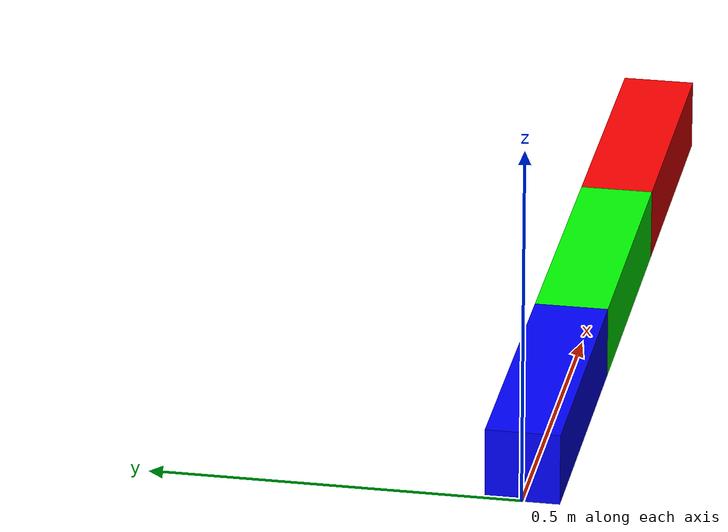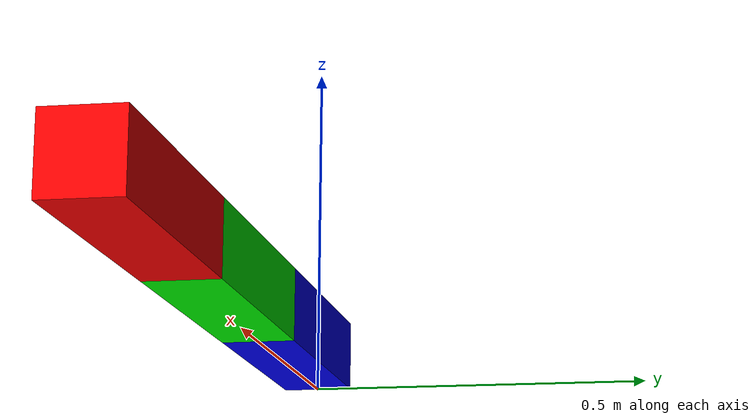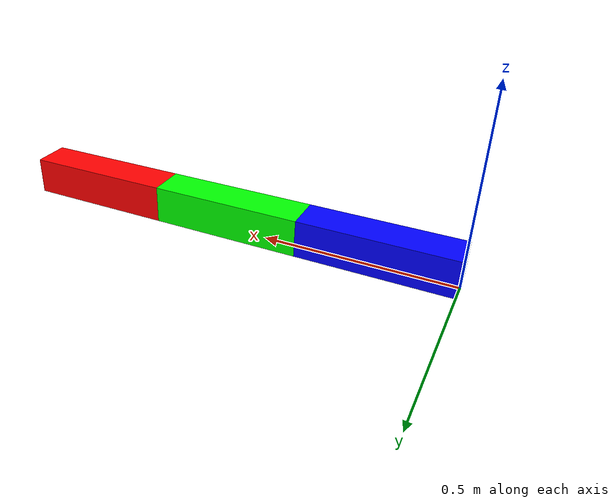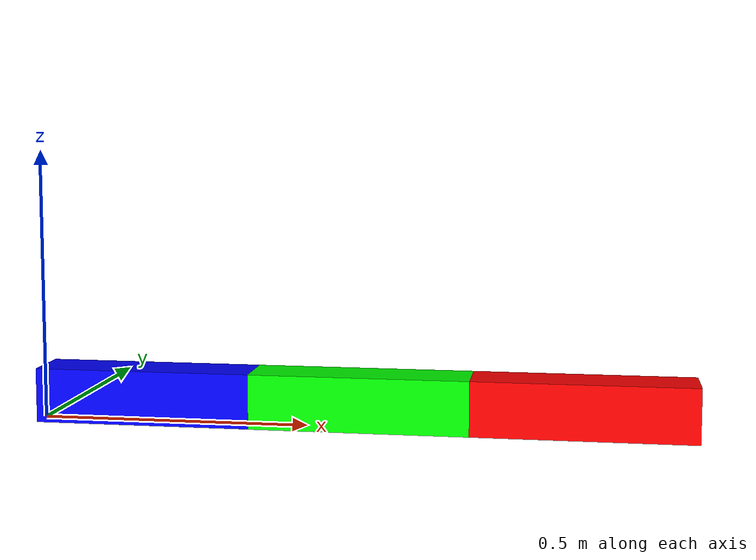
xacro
<?xml version="1.0"?>
<robot name="snake_robot" xmlns:xacro="http://www.ros.org/wiki/xacro">

  <!-- Include Gazebo Parameters -->
  <gazebo>
      <plugin filename="libgazebo_ros2_control.so" name="gazebo_ros2_control">
        <robot_param>robot_description</robot_param>
        <robot_param_node>robot_state_publisher</robot_param_node>
        <parameters>$(find s3_controller)/config/s3_controllers.yaml</parameters>
      </plugin>
  </gazebo>
    <!-- Include ros2_control Plugins -->
  <ros2_control name="RobotSystem" type="system">

        <xacro:property name="PI" value="3.14159265359" />

        <!-- ros2_control Gazebo -->
        <hardware>
            <plugin>gazebo_ros2_control/GazeboSystem</plugin>
        </hardware>

        <joint name="joint_1">
            <command_interface name="position">
            <param name="min">-${PI / 2}</param>
            <param name="max">${PI / 2}</param>
            </command_interface>
            <state_interface name="position"/>
        </joint>

        <joint name="joint_2">
            <command_interface name="position">
            <param name="min">-${PI / 2}</param>
            <param name="max">${PI / 2}</param>
            </command_interface>
            <state_interface name="position"/>
        </joint>

  </ros2_control>

  <xacro:property name="PI" value="3.14159265359" />

  <xacro:macro name="default_transmission" params="number">
        <transmission name="transmission_${number}">
            <plugin>transmission_interface/SimpleTransmission</plugin>
            <actuator name="motor_${number}" role="actuator1"/>
            <joint name="joint_${number}"    role="joint1">
                <mechanical_reduction>1.0</mechanical_reduction>
            </joint>
        </transmission>
  </xacro:macro>

  <!-- Base Link -->
  <link name="base_link" />

  <!-- Link 1 -->
  <link name="link1">
    <inertial>
      <origin xyz="0.2 0 0.05" rpy="0 0 0" />
      <mass value="0.1" />
      <inertia ixx="1.0" ixy="0.0" ixz="0.0"
               iyy="1.0" iyz="0.0"
               izz="1.0" />
    </inertial>
    <visual>
      <origin xyz="0.2 0 0.05" rpy="0 0 0" />
      <geometry>
        <box size="0.4 0.1 0.1"/> <!-- Length, Width, Height -->
      </geometry>
      <material name="blue">
        <color rgba="0 0 1 1"/>
      </material>
    </visual>
    <collision>
      <origin xyz="0.2 0 0.05" rpy="0 0 0" />
      <geometry>
        <box size="0.4 0.1 0.1"/> <!-- Length, Width, Height -->
      </geometry>
    </collision>
  </link>

  <!-- Link 2 -->
  <link name="link2">
    <inertial>
      <origin xyz="0.2 0 0.05" rpy="0 0 0" />
      <mass value="0.1" />
      <inertia ixx="1.0" ixy="0.0" ixz="0.0"
               iyy="1.0" iyz="0.0"
               izz="1.0" />
    </inertial>
    <visual>
      <origin xyz="0.2 0 0.05" rpy="0 0 0" />
      <geometry>
        <box size="0.4 0.1 0.1"/> <!-- Length, Width, Height -->
      </geometry>
      <material name="green">
        <color rgba="0 1 0 1"/>
      </material>
    </visual>
    <collision>
      <origin xyz="0.2 0 0.05" rpy="0 0 0" />
      <geometry>
        <box size="0.4 0.1 0.1"/> <!-- Length, Width, Height -->
      </geometry>
    </collision>
  </link>

  <!-- Link 3 -->
  <link name="link3">
    <inertial>
      <origin xyz="0.2 0 0.05" rpy="0 0 0" />
      <mass value="0.1" />
      <inertia ixx="1.0" ixy="0.0" ixz="0.0"
               iyy="1.0" iyz="0.0"
               izz="1.0" />
    </inertial>
    <visual>
      <origin xyz="0.2 0 0.05" rpy="0 0 0" />
      <geometry>
        <box size="0.4 0.1 0.1"/> <!-- Length, Width, Height -->
      </geometry>
      <material name="red">
        <color rgba="1 0 0 1"/>
      </material>
    </visual>
    <collision>
      <origin xyz="0.2 0 0.05" rpy="0 0 0" />
      <geometry>
        <box size="0.4 0.1 0.1"/> <!-- Length, Width, Height -->
      </geometry>
    </collision>
  </link>

  <!-- Joint 0: Between Base Link and Link 1 -->
  <joint name="joint0" type="fixed">
    <parent link="base_link"/>
    <child link="link1"/>
    <origin xyz="0 0 0" rpy="0 0 0"/>
  </joint>

  <!-- Joint 1: Between Link 1 and Link 2 -->
  <joint name="joint_1" type="revolute">
    <parent link="link1"/>
    <child link="link2"/>
    <origin xyz="0.4 0 0" rpy="0 0 0"/>
    <axis xyz="0 0 1"/> <!-- Rotation around Z-axis -->
    <limit lower="${-PI/2}" upper="${PI/2}" effort="30" velocity="10" />
  </joint>

  <!-- Joint 2: Between Link 2 and Link 3 -->
  <joint name="joint_2" type="revolute">
    <parent link="link2"/>
    <child link="link3"/>
    <origin xyz="0.4 0 0" rpy="0 0 0"/>
    <axis xyz="0 0 1"/> <!-- Rotation around Z-axis -->
    <limit lower="${-PI/2}" upper="${PI/2}" effort="30" velocity="10" />
  </joint>

  <xacro:default_transmission number="1"/>
  <xacro:default_transmission number="2"/>

</robot>
